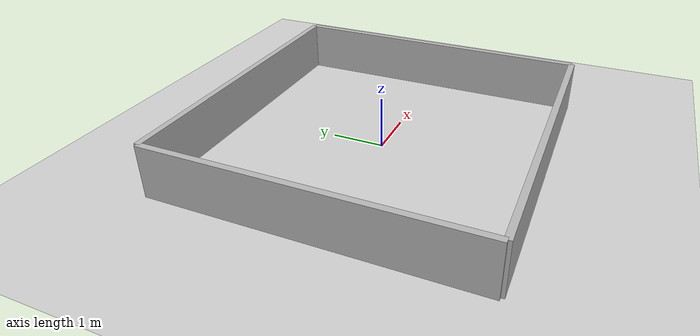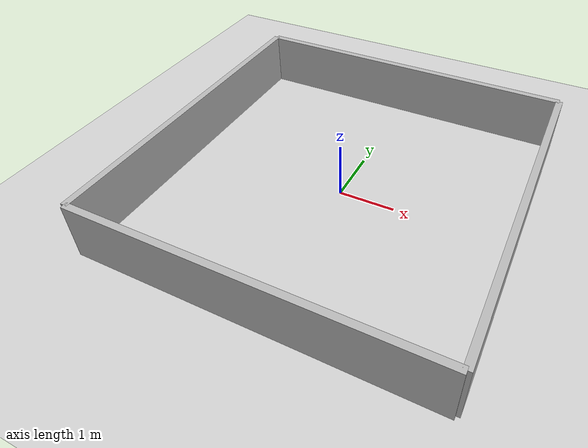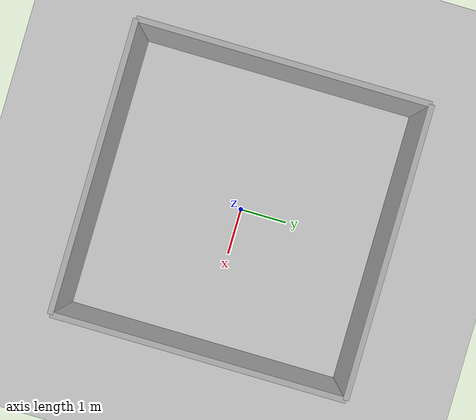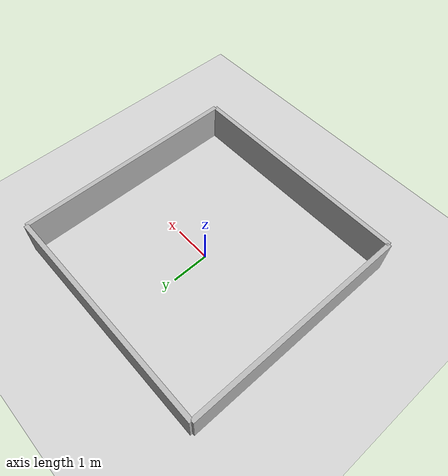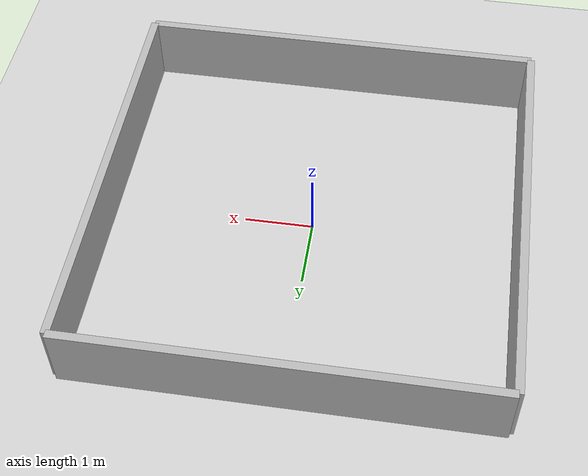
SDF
<sdf version="1.10">
  <world name="simple_test">
    <plugin filename="gz-sim-physics-system" name="gz::sim::systems::Physics"/>
    <plugin filename="gz-sim-user-commands-system" name="gz::sim::systems::UserCommands"/>
    <plugin filename="gz-sim-scene-broadcaster-system" name="gz::sim::systems::SceneBroadcaster"/>
    <plugin filename="gz-sim8-sensors-system" name="gz::sim::systems::Sensors">
      <render_engine>ogre2</render_engine>
    </plugin>
    <plugin filename="gz-sim8-imu-system" name="gz::sim::systems::Imu"/>

    <gravity>0 0 -9.81</gravity>

    <light name="sun" type="directional">
      <pose>0 0 10 0 0 0</pose>
      <diffuse>0.8 0.8 0.8 1</diffuse>
      <specular>0.2 0.2 0.2 1</specular>
      <direction>-0.5 0.1 -0.9</direction>
    </light>

    <model name="ground_plane">
      <static>true</static>
      <link name="link">
        <collision name="collision">
          <geometry>
            <plane>
              <normal>0 0 1</normal>
              <size>12 12</size>
            </plane>
          </geometry>
        </collision>
        <visual name="visual">
          <geometry>
            <plane>
              <normal>0 0 1</normal>
              <size>12 12</size>
            </plane>
          </geometry>
          <material>
            <ambient>0.82 0.82 0.82 1</ambient>
            <diffuse>0.82 0.82 0.82 1</diffuse>
          </material>
        </visual>
      </link>
    </model>

    <model name="test_room_walls">
      <static>true</static>
      <link name="north_wall">
        <pose>0 3 0.5 0 0 0</pose>
        <collision name="collision"><geometry><box><size>6.0 0.12 1.0</size></box></geometry></collision>
        <visual name="visual"><geometry><box><size>6.0 0.12 1.0</size></box></geometry></visual>
      </link>
      <link name="south_wall">
        <pose>0 -3 0.5 0 0 0</pose>
        <collision name="collision"><geometry><box><size>6.0 0.12 1.0</size></box></geometry></collision>
        <visual name="visual"><geometry><box><size>6.0 0.12 1.0</size></box></geometry></visual>
      </link>
      <link name="east_wall">
        <pose>3 0 0.5 0 0 0</pose>
        <collision name="collision"><geometry><box><size>0.12 6.0 1.0</size></box></geometry></collision>
        <visual name="visual"><geometry><box><size>0.12 6.0 1.0</size></box></geometry></visual>
      </link>
      <link name="west_wall">
        <pose>-3 0 0.5 0 0 0</pose>
        <collision name="collision"><geometry><box><size>0.12 6.0 1.0</size></box></geometry></collision>
        <visual name="visual"><geometry><box><size>0.12 6.0 1.0</size></box></geometry></visual>
      </link>
    </model>
  </world>
</sdf>
